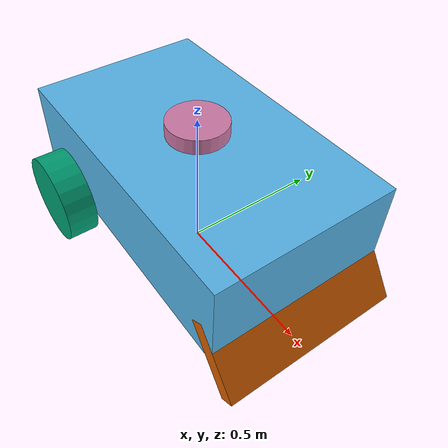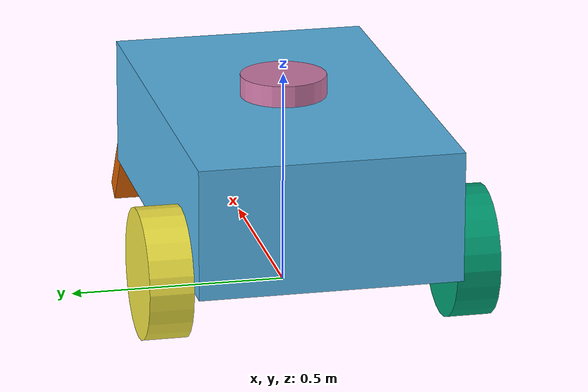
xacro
<?xml version="1.0"?>
<robot name="differential_drive_robot" xmlns:xacro="http://www.ros.org/wiki/xacro">

  <!-- Constants -->
  <xacro:property name="pi_const" value="3.14159265"/>

  <xacro:property name="r" value="0.15"/> <!-- 5 cm -->
  <xacro:property name="d" value="0.1"/> <!-- 30 cm between wheels -->

  <xacro:property name="a" value="1.0"/>
  <xacro:property name="c" value="0.6"/>
  <xacro:property name="b" value="0.3"/>

  <xacro:property name="s1" value="${b/2+r}"/>
  <xacro:property name="s2" value="${2*r}"/>
  <xacro:property name="s3" value="${2*r}"/>
  <xacro:property name="s4" value="${c/2+d/2}"/>

  <!-- Mass and Inertia-->
  <xacro:property name="d1" value="2710.0"/>
  <xacro:property name="d2" value="2710.0"/>
  <xacro:property name="d3" value="2710.0"/>

  <xacro:property name="m1" value="${d1*a*b*c}"/>
  <xacro:property name="m2" value="${d2*pi_const*r*r*d}"/>
  <xacro:property name="m3" value="${d3*(4.0/3.0)*pi_const*r*r*r}"/>

  <xacro:property name="Ix_body" value="${(1/12)*m1*(b*b+c*c)}"/>
  <xacro:property name="Iy_body" value="${(1/12)*m1*(a*a+b*b)}"/>
  <xacro:property name="Iz_body" value="${(1/12)*m1*(a*a+c*c)}"/>

  <xacro:property name="Iz_wheel" value="${0.5*m2*r*r}"/>
  <xacro:property name="I_wheel" value="${(1.0/12.0)*m2*(3.0*r*r+d*d)}"/>

  <xacro:property name="I_caster" value="${(2.0/5.0)*m3*r*r}"/>

  <!-- Macros -->
  <xacro:macro name="inertia_body">
    <inertial>
      <origin rpy="0 0 0" xyz="0 0 ${s1}"/>
      <mass value="${m1}"/>
      <inertia ixx="${Ix_body}" ixy="0.0" ixz="0.0" iyy="${Iy_body}" iyz="0" izz="${Iz_body}" />
    </inertial>
  </xacro:macro>

  <xacro:macro name="inertia_wheel">
    <inertial>
      <origin rpy="1.570795 0 0" xyz="0 0 0"/>
      <mass value="${m2}"/>
      <inertia ixx="${I_wheel}" ixy="0.0" ixz="0.0" iyy="${I_wheel}" iyz="0" izz="${Iz_wheel}" />
    </inertial>
  </xacro:macro>

  <xacro:macro name="inertia_caster">
    <inertial>
      <origin rpy="0 0 0" xyz="0 0 0"/>
      <mass value="${m3}"/>
      <inertia ixx="${I_caster}" ixy="0.0" ixz="0.0" iyy="${I_caster}" iyz="0" izz="${I_caster}" />
    </inertial>
  </xacro:macro>

  <!-- Include additional files -->
  <xacro:include filename="$(find mobile_robot)/model/robot.gazebo"/>

  <!-- Base link -->
  <link name="base_footprint"/>

  <joint name="body_link_joint" type="fixed">
    <parent link="base_footprint"/>
    <child link="body_link"/>
  </joint>

  <!-- Body link -->
  <link name="body_link">
    <visual>
      <geometry>
        <box size="${a} ${c} ${b}"/>
      </geometry>
      <origin rpy="0 0 0" xyz="0 0 ${s1}"/>
    </visual>
    <collision>
      <geometry>
        <box size="${a} ${c} ${b}"/>
      </geometry>
      <origin rpy="0 0 0" xyz="0 0 ${s1}"/>
    </collision>
    <xacro:inertia_body />
  </link>

  <!-- Back right wheel -->
  <joint name="wheel1_joint" type="continuous">
    <parent link="body_link"/>
    <child link="wheel1_link"/>
    <origin xyz="${-s2} ${-s4} ${r}" rpy="0 0 0"/>
    <axis xyz="0 1 0"/>
    <limit effort="50000" velocity="10"/>
    <dynamics damping="1.0" friction="1.0"/>
  </joint>

  <link name="wheel1_link">
    <visual>
      <origin rpy="1.570795 0 0" xyz="0 0 0"/>
      <geometry>
        <cylinder length="${d}" radius="${r}"/>
      </geometry>
    </visual>
    <collision>
      <origin rpy="1.570795 0 0" xyz="0 0 0"/>
      <geometry>
        <cylinder length="${d}" radius="${r}"/>
      </geometry>
    </collision>
    <xacro:inertia_wheel />
  </link>

  <!-- Back left wheel -->
  <joint name="wheel2_joint" type="continuous">
    <parent link="body_link"/>
    <child link="wheel2_link"/>
    <origin xyz="${-s2} ${s4} ${r}" rpy="0 0 0"/>
    <axis xyz="0 1 0"/>
    <limit effort="50000" velocity="10"/>
    <dynamics damping="1.0" friction="1.0"/>
  </joint>

  <link name="wheel2_link">
    <visual>
      <origin rpy="1.570795 0 0" xyz="0 0 0"/>
      <geometry>
        <cylinder length="${d}" radius="${r}"/>
      </geometry>
    </visual>
    <collision>
      <origin rpy="1.570795 0 0" xyz="0 0 0"/>
      <geometry>
        <cylinder length="${d}" radius="${r}"/>
      </geometry>
    </collision>
    <xacro:inertia_wheel />
  </link>

  <!-- Caster wheel -->
  <joint name="caster_joint" type="fixed">
    <parent link="body_link"/>
    <child link="caster_link"/>
    <origin xyz="${s3} 0 ${r}" rpy="0 0 0"/>
  </joint>

  <link name="caster_link">
    <visual>
      <origin rpy="0 0 0" xyz="0 0 0"/>
      <geometry>
        <sphere radius="${r}"/>
      </geometry>
    </visual>
    <collision>
      <origin rpy="0 0 0" xyz="0 0 0"/>
      <geometry>
        <sphere radius="${r}"/>
      </geometry>
    </collision>
    <xacro:inertia_caster />
  </link>

  <!-- Sloped front (wedge) -->
<joint name="slope_joint" type="fixed">
  <parent link="body_link"/>
  <child link="slope_link"/>
</joint>

<link name="slope_link">
  <visual>
    <origin xyz="${a/2} 0 ${b/2}" rpy="3.14 2.54 0"/> <!-- tilt the wedge -->
    <geometry>
      <box size="0.05 ${c} 0.25"/> <!-- thin in X, full width Y, height Z -->
    </geometry>

  </visual>
  <collision>
    <geometry>
      <box size="0.05 ${c} 0.25"/>
    </geometry>
    <origin xyz="${a/2} 0 ${b/2}" rpy="3.14 2.54 0"/>
  </collision>
</link>
  <!-- Lidar -->
  <joint name="lidar_joint" type="fixed">
    <origin xyz="0.0 0 ${b+r}" rpy="0 0 0"/>
    <parent link="body_link"/>
    <child link="lidar_link"/>
  </joint>

  <link name="lidar_link">
    <visual>
      <origin rpy="0 0 0.05" xyz="0 0 0"/>
      <geometry>
        <cylinder length="0.1" radius="0.1"/>
      </geometry>
    </visual>
    <collision>
      <origin rpy="0 0 0" xyz="0 0 0.05"/>
      <geometry>
        <cylinder length="0.1" radius="0.1"/>
      </geometry>
    </collision>
    <inertial>
      <mass value="1e-6"/>
      <origin rpy="0 0 0" xyz="0 0 0"/>
      <inertia ixx="1e-6" ixy="0" ixz="0" iyy="1e-6" iyz="0" izz="1e-6"/>
    </inertial>
  </link>

</robot>
